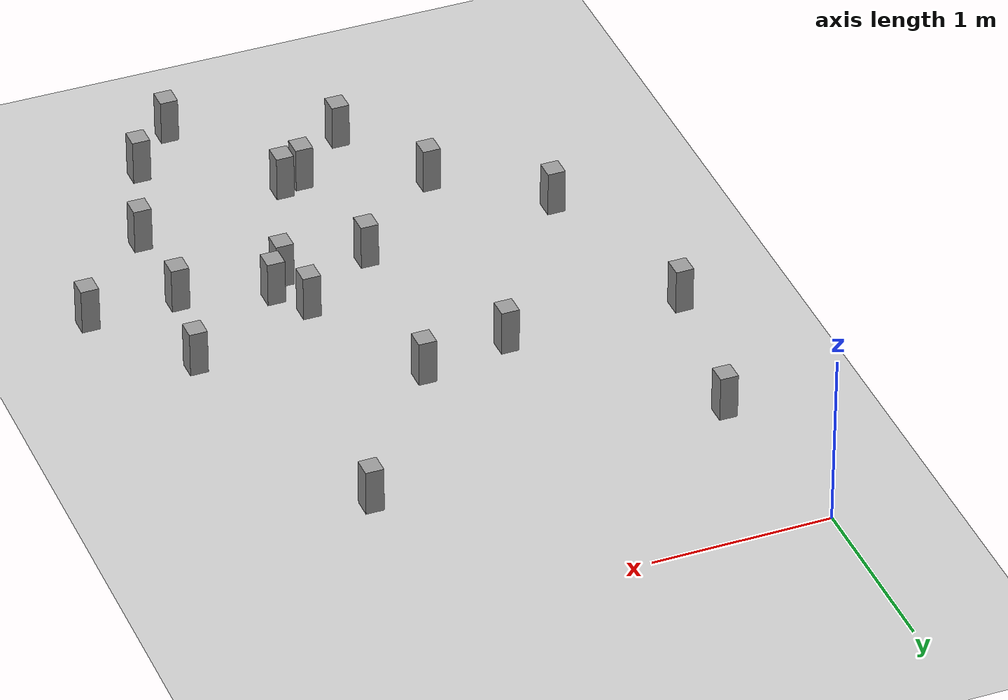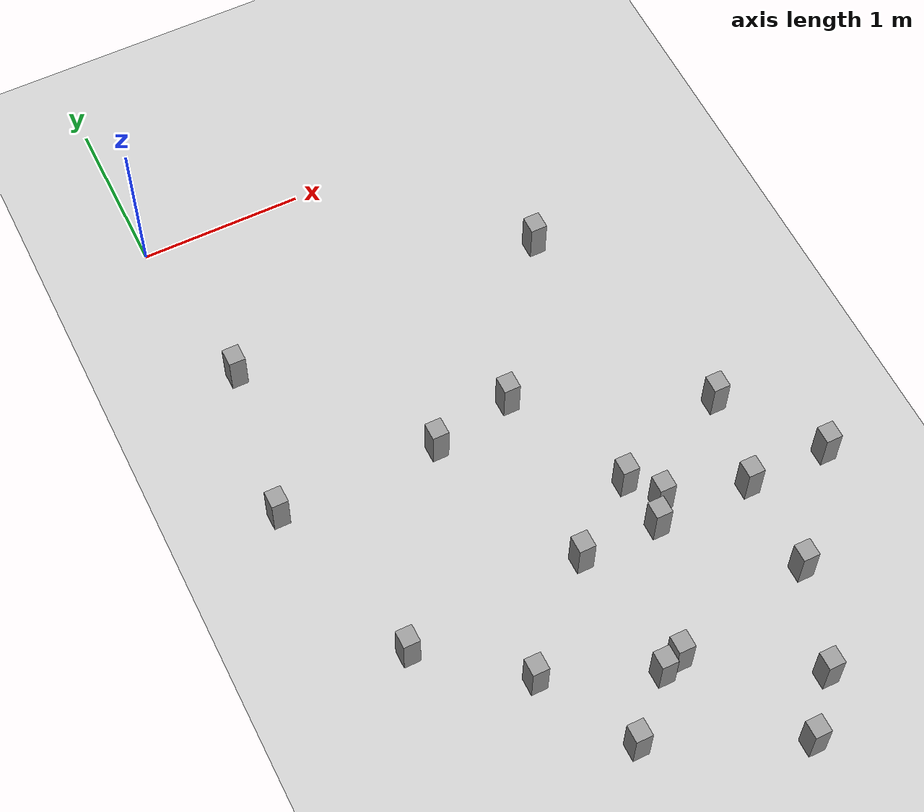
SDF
<sdf version="1.5">
 <world name="default">
  <light name="sun" type="directional">
   <pose>0 0 10 0 -0 0</pose>
   <diffuse>0.8 0.8 0.8 1</diffuse>
   <specular>0.2 0.2 0.2 1</specular>
   <attenuation>
    <range>1000</range>
    <constant>0.9</constant>
    <linear>0.01</linear>
    <quadratic>0.001</quadratic>
   </attenuation>
   <direction>-0.5 0.1 -0.9</direction>
  </light>
  <model name="ground_plane">
   <static>1</static>
   <link name="link">
    <collision name="collision">
     <geometry><plane><normal>0 0 1</normal><size>100 100</size></plane></geometry>
     <surface><friction><ode><mu>100</mu><mu2>50</mu2></ode></friction></surface>
    </collision>
    <visual name="visual">
     <cast_shadows>0</cast_shadows>
     <geometry><plane><normal>0 0 1</normal><size>100 100</size></plane></geometry>
     <material>
      <script><uri>file://media/materials/scripts/gazebo.material</uri><name>Gazebo/Grey</name></script>
     </material>
    </visual>
   </link>
  </model>
  <physics name="default_physics" default="0" type="ode">
   <max_step_size>0.001</max_step_size>
   <real_time_factor>1</real_time_factor>
   <real_time_update_rate>1000</real_time_update_rate>
   <gravity>0 0 -9.8</gravity>
   <magnetic_field>5.5645e-06 2.28758e-05 -4.23884e-05</magnetic_field>
  </physics>
  <scene><ambient>0.4 0.4 0.4 1</ambient><background>0.7 0.7 0.7 1</background><shadows>1</shadows></scene>
  <spherical_coordinates>
   <surface_model>EARTH_WGS84</surface_model>
   <latitude_deg>0</latitude_deg>
   <longitude_deg>0</longitude_deg>
   <elevation>0</elevation>
   <heading_deg>0</heading_deg>
  </spherical_coordinates>
  <model name="unit_box_2">
   <pose>1.8985 -3.00011 0.132093 3e-06 -8.27181e-25 0.002302</pose>
   <link name="link">
    <inertial>
     <mass>1</mass>
     <inertia><ixx>1</ixx><ixy>0</ixy><ixz>0</ixz><iyy>1</iyy><iyz>0</iyz><izz>1</izz></inertia>
    </inertial>
    <collision name="collision"><geometry><box><size>0.10112 0.110497 0.264186</size></box></geometry></collision>
    <visual name="visual">
     <geometry><box><size>0.10112 0.110497 0.264186</size></box></geometry>
     <material>
      <script><uri>file://media/materials/scripts/gazebo.material</uri><name>Gazebo/Grey</name></script>
     </material>
    </visual>
   </link>
  </model>
  <model name="unit_box_2_clone">
   <pose>1.86524 -2.67652 0.132093 4e-06 -1e-06 -0.001992</pose>
   <link name="link">
    <inertial>
     <mass>1</mass>
     <inertia><ixx>1</ixx><ixy>0</ixy><ixz>0</ixz><iyy>1</iyy><iyz>0</iyz><izz>1</izz></inertia>
    </inertial>
    <collision name="collision"><geometry><box><size>0.10112 0.110497 0.264186</size></box></geometry></collision>
    <visual name="visual">
     <geometry><box><size>0.10112 0.110497 0.264186</size></box></geometry>
     <material>
      <script><uri>file://media/materials/scripts/gazebo.material</uri><name>Gazebo/Grey</name></script>
     </material>
    </visual>
   </link>
  </model>
  <model name="unit_box_2_clone_0">
   <pose>1.61192 -3.76733 0.132093 0 -0 0.001604</pose>
   <link name="link">
    <inertial>
     <mass>1</mass>
     <inertia><ixx>1</ixx><ixy>0</ixy><ixz>0</ixz><iyy>1</iyy><iyz>0</iyz><izz>1</izz></inertia>
    </inertial>
    <collision name="collision"><geometry><box><size>0.10112 0.110497 0.264186</size></box></geometry></collision>
    <visual name="visual">
     <geometry><box><size>0.10112 0.110497 0.264186</size></box></geometry>
     <material>
      <script><uri>file://media/materials/scripts/gazebo.material</uri><name>Gazebo/Grey</name></script>
     </material>
    </visual>
   </link>
  </model>
  <model name="unit_box_2_clone_1">
   <pose>1.99754 -2.8651 0.132093 0 -1e-06 -0.000119</pose>
   <link name="link">
    <inertial>
     <mass>1</mass>
     <inertia><ixx>1</ixx><ixy>0</ixy><ixz>0</ixz><iyy>1</iyy><iyz>0</iyz><izz>1</izz></inertia>
    </inertial>
    <collision name="collision"><geometry><box><size>0.10112 0.110497 0.264186</size></box></geometry></collision>
    <visual name="visual">
     <geometry><box><size>0.10112 0.110497 0.264186</size></box></geometry>
     <material>
      <script><uri>file://media/materials/scripts/gazebo.material</uri><name>Gazebo/Grey</name></script>
     </material>
    </visual>
   </link>
  </model>
  <model name="unit_box_2_clone_2">
   <pose>2.49266 -3 0.132093 4.1359e-25 1e-06 0.002045</pose>
   <link name="link">
    <inertial>
     <mass>1</mass>
     <inertia><ixx>1</ixx><ixy>0</ixy><ixz>0</ixz><iyy>1</iyy><iyz>0</iyz><izz>1</izz></inertia>
    </inertial>
    <collision name="collision"><geometry><box><size>0.10112 0.110497 0.264186</size></box></geometry></collision>
    <visual name="visual">
     <geometry><box><size>0.10112 0.110497 0.264186</size></box></geometry>
     <material>
      <script><uri>file://media/materials/scripts/gazebo.material</uri><name>Gazebo/Grey</name></script>
     </material>
    </visual>
   </link>
  </model>
  <model name="unit_box_2_clone_3">
   <pose>0.844291 -3.53963 0.132093 3e-06 8e-06 0.002295</pose>
   <link name="link">
    <inertial>
     <mass>1</mass>
     <inertia><ixx>1</ixx><ixy>0</ixy><ixz>0</ixz><iyy>1</iyy><iyz>0</iyz><izz>1</izz></inertia>
    </inertial>
    <collision name="collision"><geometry><box><size>0.10112 0.110497 0.264186</size></box></geometry></collision>
    <visual name="visual">
     <geometry><box><size>0.10112 0.110497 0.264186</size></box></geometry>
     <material>
      <script><uri>file://media/materials/scripts/gazebo.material</uri><name>Gazebo/Grey</name></script>
     </material>
    </visual>
   </link>
  </model>
  <model name="unit_box_2_clone_4">
   <pose>1 -2 0.132093 -2e-06 -2e-06 0.002336</pose>
   <link name="link">
    <inertial>
     <mass>1</mass>
     <inertia><ixx>1</ixx><ixy>0</ixy><ixz>0</ixz><iyy>1</iyy><iyz>0</iyz><izz>1</izz></inertia>
    </inertial>
    <collision name="collision"><geometry><box><size>0.10112 0.110497 0.264186</size></box></geometry></collision>
    <visual name="visual">
     <geometry><box><size>0.10112 0.110497 0.264186</size></box></geometry>
     <material>
      <script><uri>file://media/materials/scripts/gazebo.material</uri><name>Gazebo/Grey</name></script>
     </material>
    </visual>
   </link>
  </model>
  <model name="unit_box_2_clone_5">
   <pose>2.01751 -4.50741 0.132095 2.2e-05 6e-06 0.002353</pose>
   <link name="link">
    <inertial>
     <mass>1</mass>
     <inertia><ixx>1</ixx><ixy>0</ixy><ixz>0</ixz><iyy>1</iyy><iyz>0</iyz><izz>1</izz></inertia>
    </inertial>
    <collision name="collision"><geometry><box><size>0.10112 0.110497 0.264186</size></box></geometry></collision>
    <visual name="visual">
     <geometry><box><size>0.10112 0.110497 0.264186</size></box></geometry>
     <material>
      <script><uri>file://media/materials/scripts/gazebo.material</uri><name>Gazebo/Grey</name></script>
     </material>
    </visual>
   </link>
  </model>
  <model name="unit_box_2_clone_6">
   <pose>1.41333 -3 0.132093 -2e-06 5e-06 0.002302</pose>
   <link name="link">
    <inertial>
     <mass>1</mass>
     <inertia><ixx>1</ixx><ixy>0</ixy><ixz>0</ixz><iyy>1</iyy><iyz>0</iyz><izz>1</izz></inertia>
    </inertial>
    <collision name="collision"><geometry><box><size>0.10112 0.110497 0.264186</size></box></geometry></collision>
    <visual name="visual">
     <geometry><box><size>0.10112 0.110497 0.264186</size></box></geometry>
     <material>
      <script><uri>file://media/materials/scripts/gazebo.material</uri><name>Gazebo/Grey</name></script>
     </material>
    </visual>
   </link>
  </model>
  <model name="unit_box_2_clone_7">
   <pose>2.28743 -4.20237 0.132094 1e-06 -1.1e-05 0.000461</pose>
   <link name="link">
    <inertial>
     <mass>1</mass>
     <inertia><ixx>1</ixx><ixy>0</ixy><ixz>0</ixz><iyy>1</iyy><iyz>0</iyz><izz>1</izz></inertia>
    </inertial>
    <collision name="collision"><geometry><box><size>0.10112 0.110497 0.264186</size></box></geometry></collision>
    <visual name="visual">
     <geometry><box><size>0.10112 0.110497 0.264186</size></box></geometry>
     <material>
      <script><uri>file://media/materials/scripts/gazebo.material</uri><name>Gazebo/Grey</name></script>
     </material>
    </visual>
   </link>
  </model>
  <model name="unit_box_2_clone_8">
   <pose>2.49689 -3.58747 0.132094 0 -1.5e-05 0.002322</pose>
   <link name="link">
    <inertial>
     <mass>1</mass>
     <inertia><ixx>1</ixx><ixy>0</ixy><ixz>0</ixz><iyy>1</iyy><iyz>0</iyz><izz>1</izz></inertia>
    </inertial>
    <collision name="collision"><geometry><box><size>0.10112 0.110497 0.264186</size></box></geometry></collision>
    <visual name="visual">
     <geometry><box><size>0.10112 0.110497 0.264186</size></box></geometry>
     <material>
      <script><uri>file://media/materials/scripts/gazebo.material</uri><name>Gazebo/Grey</name></script>
     </material>
    </visual>
   </link>
  </model>
  <model name="unit_box_2_clone_9">
   <pose>3 -3 0.132094 -2e-06 8e-06 0.002331</pose>
   <link name="link">
    <inertial>
     <mass>1</mass>
     <inertia><ixx>1</ixx><ixy>0</ixy><ixz>0</ixz><iyy>1</iyy><iyz>0</iyz><izz>1</izz></inertia>
    </inertial>
    <collision name="collision"><geometry><box><size>0.10112 0.110497 0.264186</size></box></geometry></collision>
    <visual name="visual">
     <geometry><box><size>0.10112 0.110497 0.264186</size></box></geometry>
     <material>
      <script><uri>file://media/materials/scripts/gazebo.material</uri><name>Gazebo/Grey</name></script>
     </material>
    </visual>
   </link>
  </model>
  <model name="unit_box_2_clone_10">
   <pose>2.59475 -2.42817 0.132093 2e-06 5e-06 0.002322</pose>
   <link name="link">
    <inertial>
     <mass>1</mass>
     <inertia><ixx>1</ixx><ixy>0</ixy><ixz>0</ixz><iyy>1</iyy><iyz>0</iyz><izz>1</izz></inertia>
    </inertial>
    <collision name="collision"><geometry><box><size>0.10112 0.110497 0.264186</size></box></geometry></collision>
    <visual name="visual">
     <geometry><box><size>0.10112 0.110497 0.264186</size></box></geometry>
     <material>
      <script><uri>file://media/materials/scripts/gazebo.material</uri><name>Gazebo/Grey</name></script>
     </material>
    </visual>
   </link>
  </model>
  <model name="unit_box_2_clone_11">
   <pose>2.1598 -0.974163 0.132093 4e-06 1e-06 0.002326</pose>
   <link name="link">
    <inertial>
     <mass>1</mass>
     <inertia><ixx>1</ixx><ixy>0</ixy><ixz>0</ixz><iyy>1</iyy><iyz>0</iyz><izz>1</izz></inertia>
    </inertial>
    <collision name="collision"><geometry><box><size>0.10112 0.110497 0.264186</size></box></geometry></collision>
    <visual name="visual">
     <geometry><box><size>0.10112 0.110497 0.264186</size></box></geometry>
     <material>
      <script><uri>file://media/materials/scripts/gazebo.material</uri><name>Gazebo/Grey</name></script>
     </material>
    </visual>
   </link>
  </model>
  <model name="unit_box_2_clone_12">
   <pose>1.50552 -1.90442 0.132093 -6e-06 -0 0.002314</pose>
   <link name="link">
    <inertial>
     <mass>1</mass>
     <inertia><ixx>1</ixx><ixy>0</ixy><ixz>0</ixz><iyy>1</iyy><iyz>0</iyz><izz>1</izz></inertia>
    </inertial>
    <collision name="collision"><geometry><box><size>0.10112 0.110497 0.264186</size></box></geometry></collision>
    <visual name="visual">
     <geometry><box><size>0.10112 0.110497 0.264186</size></box></geometry>
     <material>
      <script><uri>file://media/materials/scripts/gazebo.material</uri><name>Gazebo/Grey</name></script>
     </material>
    </visual>
   </link>
  </model>
  <model name="unit_box_2_clone_13">
   <pose>-1e-06 -2 0.132095 2.4e-05 -6e-06 0.002315</pose>
   <link name="link">
    <inertial>
     <mass>1</mass>
     <inertia><ixx>1</ixx><ixy>0</ixy><ixz>0</ixz><iyy>1</iyy><iyz>0</iyz><izz>1</izz></inertia>
    </inertial>
    <collision name="collision"><geometry><box><size>0.10112 0.110497 0.264186</size></box></geometry></collision>
    <visual name="visual">
     <geometry><box><size>0.10112 0.110497 0.264186</size></box></geometry>
     <material>
      <script><uri>file://media/materials/scripts/gazebo.material</uri><name>Gazebo/Grey</name></script>
     </material>
    </visual>
   </link>
  </model>
  <model name="unit_box_2_clone_14">
   <pose>0.292996 -3.08982 0.132094 1.4e-05 -1e-06 0.002321</pose>
   <link name="link">
    <inertial>
     <mass>1</mass>
     <inertia><ixx>1</ixx><ixy>0</ixy><ixz>0</ixz><iyy>1</iyy><iyz>0</iyz><izz>1</izz></inertia>
    </inertial>
    <collision name="collision"><geometry><box><size>0.10112 0.110497 0.264186</size></box></geometry></collision>
    <visual name="visual">
     <geometry><box><size>0.10112 0.110497 0.264186</size></box></geometry>
     <material>
      <script><uri>file://media/materials/scripts/gazebo.material</uri><name>Gazebo/Grey</name></script>
     </material>
    </visual>
   </link>
  </model>
  <model name="unit_box_2_clone_15">
   <pose>0.156115 -1.0387 0.132093 -3e-06 1.65436e-24 0.002307</pose>
   <link name="link">
    <inertial>
     <mass>1</mass>
     <inertia><ixx>1</ixx><ixy>0</ixy><ixz>0</ixz><iyy>1</iyy><iyz>0</iyz><izz>1</izz></inertia>
    </inertial>
    <collision name="collision"><geometry><box><size>0.10112 0.110497 0.264186</size></box></geometry></collision>
    <visual name="visual">
     <geometry><box><size>0.10112 0.110497 0.264186</size></box></geometry>
     <material>
      <script><uri>file://media/materials/scripts/gazebo.material</uri><name>Gazebo/Grey</name></script>
     </material>
    </visual>
   </link>
  </model>
  <model name="unit_box_2_clone_16">
   <pose>1.15864 -4.11486 0.132093 0 -1e-06 0.002317</pose>
   <link name="link">
    <inertial>
     <mass>1</mass>
     <inertia><ixx>1</ixx><ixy>0</ixy><ixz>0</ixz><iyy>1</iyy><iyz>0</iyz><izz>1</izz></inertia>
    </inertial>
    <collision name="collision"><geometry><box><size>0.10112 0.110497 0.264186</size></box></geometry></collision>
    <visual name="visual">
     <geometry><box><size>0.10112 0.110497 0.264186</size></box></geometry>
     <material>
      <script><uri>file://media/materials/scripts/gazebo.material</uri><name>Gazebo/Grey</name></script>
     </material>
    </visual>
   </link>
  </model>
  <model name="unit_box_2_clone_17">
   <pose>1.48639 -3.80676 0.132094 -2e-06 1e-05 0.002317</pose>
   <link name="link">
    <inertial>
     <mass>1</mass>
     <inertia><ixx>1</ixx><ixy>0</ixy><ixz>0</ixz><iyy>1</iyy><iyz>0</iyz><izz>1</izz></inertia>
    </inertial>
    <collision name="collision"><geometry><box><size>0.10112 0.110497 0.264186</size></box></geometry></collision>
    <visual name="visual">
     <geometry><box><size>0.10112 0.110497 0.264186</size></box></geometry>
     <material>
      <script><uri>file://media/materials/scripts/gazebo.material</uri><name>Gazebo/Grey</name></script>
     </material>
    </visual>
   </link>
  </model>
 </world>
</sdf>
